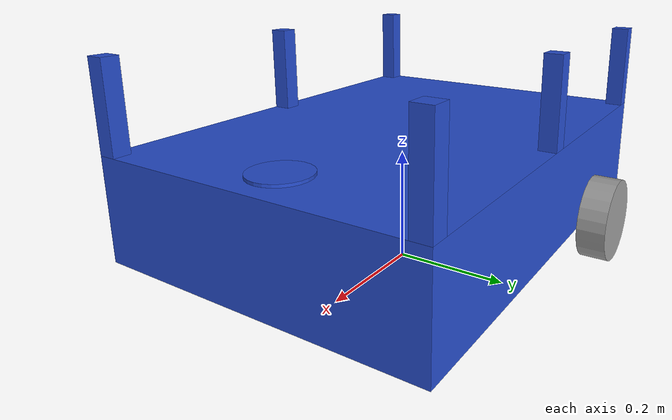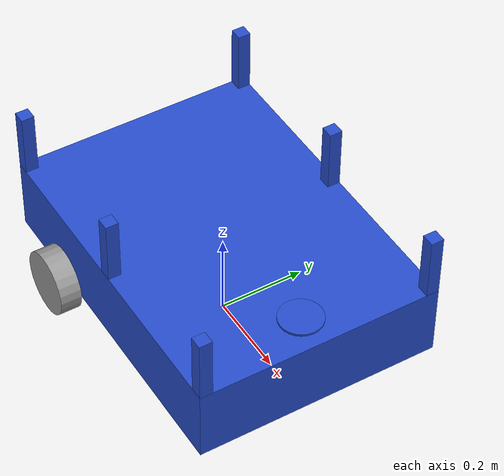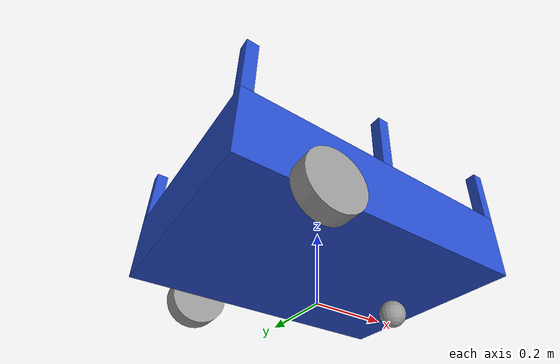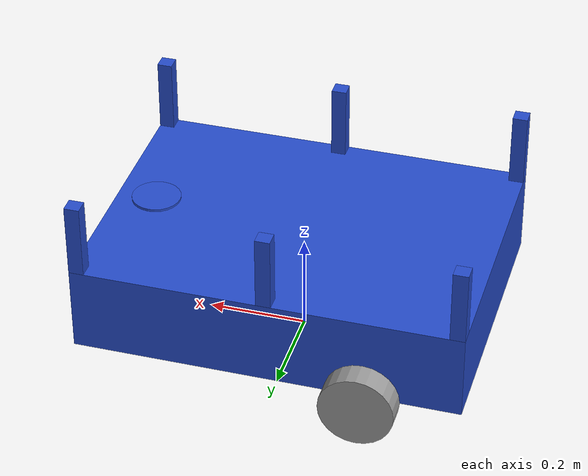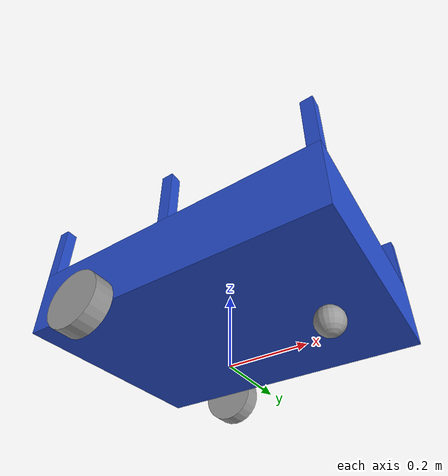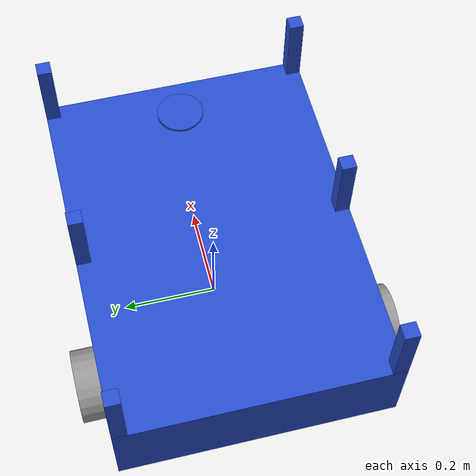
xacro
<?xml version="1.0"?>

<robot xmlns:xacro="http://www.ros.org/wiki/xacro">

    <xacro:property name="base_length" value="0.78" />
    <xacro:property name="base_width" value="0.57" />
    <xacro:property name="base_height" value="0.175" />
    <xacro:property name="wheel_radius" value="0.075" />
    <xacro:property name="wheel_length" value="0.05" />
    <xacro:property name="caster_wheel_radius" value="${wheel_radius / 2.0}" />
    <xacro:property name="support_side" value="0.03" />
    <xacro:property name="support_length" value="0.15" />

    <link name="base_link" />

    <link name="base_footprint">
    </link>

    <joint name="base_footprint_joint" type="fixed">
        <parent link="base_link"/>
        <child link="base_footprint"/>
        <origin xyz="0 0 0" rpy="0 0 0"/>
    </joint>

    <link name="chassis">
        <visual>
            <geometry>
                <box size="${base_length} ${base_width} ${base_height}" />
            </geometry>
            <origin xyz="0 0 ${base_height / 2.0}" rpy="0 0 0" />
            <material name="blue" />
        </visual>
        <collision>
            <geometry>
                <box size="${base_length} ${base_width} ${base_height}" />
            </geometry>
            <origin xyz="0 0 ${base_height / 2.0}" rpy="0 0 0" />
        </collision>
        <xacro:box_inertia m="5.0" l="${2*base_length}" w="${2*base_width}" h="${2*base_height}"
                           xyz="0 0 ${base_height / 2.0}" rpy="0 0 0" />
    </link>

    <joint name="base_link_chassis_joint" type="fixed">
        <parent link="base_link" />
        <child link="chassis" />
        <origin xyz="0 0 ${wheel_radius}" rpy="0 0 0" />
    </joint>

    <xacro:macro name="wheel_link" params="prefix">
        <link name="${prefix}_wheel_link">
            <visual>
                <geometry>
                    <cylinder radius="${wheel_radius}" length="${wheel_length}" />
                </geometry>
                <origin xyz="0 0 0" rpy="${pi / 2.0} 0 0" />
                <material name="grey" />
            </visual>
            <collision>
                <geometry>
                    <cylinder radius="${wheel_radius}" length="${wheel_length}" />
                </geometry>
                <origin xyz="0 0 0" rpy="${pi / 2.0} 0 0" />
            </collision>
            <xacro:cylinder_inertia m="1.0" r="${2*wheel_radius}" l="${2*wheel_length}"
                                    xyz="0 0 0" rpy="${pi / 2.0} 0 0" />
        </link>
    </xacro:macro>

    <xacro:wheel_link prefix="right" />
    <joint name="right_wheel_joint" type="continuous">
        <parent link="chassis" />
        <child link="right_wheel_link" />
        <origin xyz="${-base_length / 4.0} ${(-base_width / 2.0) - (wheel_length / 2.0) } 0" rpy="0 0 0" />
        <axis xyz="0 1 0" />
    </joint>

    <xacro:wheel_link prefix="left" />
    <joint name="left_wheel_joint" type="continuous">
        <parent link="chassis" />
        <child link="left_wheel_link" />
        <origin xyz="${-base_length / 4.0} ${(base_width / 2.0) + (wheel_length / 2.0) } 0" rpy="0 0 0" />
        <axis xyz="0 1 0" />
    </joint>

    <link name="caster_wheel_link">
        <visual>
            <geometry>
                <sphere radius="${caster_wheel_radius}" />
            </geometry>
            <origin xyz="0 0 0" rpy="0 0 0" />
            <material name="grey" />
        </visual>
        <collision>
            <geometry>
                <sphere radius="${caster_wheel_radius}" />
            </geometry>
            <origin xyz="0 0 0" rpy="0 0 0" />
        </collision>
        <xacro:sphere_inertia m="0.5" r="${2*caster_wheel_radius}"
                              xyz="0 0 0" rpy="0 0 0" />
    </link>

    <joint name="chassis_caster_wheel_joint" type="fixed">
        <parent link="chassis" />
        <child link="caster_wheel_link" />
        <origin xyz="${base_length / 3.0} 0 ${-caster_wheel_radius}" rpy="0 0 0" />
    </joint>
    <xacro:macro name="support_link" params="suffix">
        <link name="support_${suffix}">
            <visual>
                <geometry>
                    <box size="${support_side} ${support_side} ${support_length}" />
                </geometry>
                <origin xyz="0 0 ${(support_length/2.0)}" rpy="0 0 0" />
                <material name="blue" />
            </visual>
            <collision>
                <geometry>
                    <box size="${support_side} ${support_side} ${support_length}" />
                </geometry>
                <origin xyz="0 0 ${(support_length/2.0)}" rpy="0 0 0" />
            </collision>
            <xacro:box_inertia m="1.0" l="${2*support_side}" w="${2*support_side}" h="${2*support_length}"
                            xyz="0 0 ${(support_length/2.0)}" rpy="0 0 0" />
        </link>
    </xacro:macro>

    <xacro:support_link suffix = "1"/>
    <joint name="chassis_support_1" type="fixed">
            <parent link="chassis"/>
            <child link="support_1"/>
            <origin xyz=" ${(base_length/2.0) - (support_side/2.0)} ${(base_width/2.0) - (support_side/2.0)} ${base_height}" rpy="0 0 0"/>
    </joint>

    <xacro:support_link suffix = "2"/>
    <joint name="chassis_support_2" type="fixed">
            <parent link="chassis"/>
            <child link="support_2"/>
            <origin xyz=" 0.0 ${(base_width/2.0) - (support_side/2.0)} ${base_height}" rpy="0 0 0"/>
    </joint>

    <xacro:support_link suffix = "3"/>
    <joint name="chassis_support_3" type="fixed">
            <parent link="chassis"/>
            <child link="support_3"/>
            <origin xyz=" ${-(base_length/2.0) + (support_side/2.0)} ${(base_width/2.0) - (support_side/2.0)} ${base_height}" rpy="0 0 0"/>
    </joint>

    <xacro:support_link suffix = "4"/>
    <joint name="chassis_support_4" type="fixed">
            <parent link="chassis"/>
            <child link="support_4"/>
            <origin xyz=" ${-(base_length/2.0) + (support_side/2.0)} ${-(base_width/2.0) + (support_side/2.0)} ${base_height}" rpy="0 0 0"/>
    </joint>

    <xacro:support_link suffix = "5"/>
    <joint name="chassis_support_5" type="fixed">
            <parent link="chassis"/>
            <child link="support_5"/>
            <origin xyz=" 0.0 ${-(base_width/2.0) + (support_side/2.0)} ${base_height}" rpy="0 0 0"/>
    </joint>

    <xacro:support_link suffix = "6"/>
    <joint name="chassis_support_6" type="fixed">
            <parent link="chassis"/>
            <child link="support_6"/>
            <origin xyz=" ${(base_length/2.0) - (support_side/2.0)} ${-(base_width/2.0) + (support_side/2.0)} ${base_height}" rpy="0 0 0"/>
    </joint>

    <link name="laser_base_link">
        <visual>
            <geometry>
                <cylinder radius="0.05" length="0.01" />
            </geometry>
            <origin xyz="0 0 0.0" rpy="0 0 0" />
            <material name="blue" />

        </visual>
        <collision>
            <geometry>
                <cylinder radius="0.05" length="0.01" />
            </geometry>
            <origin xyz="0 0 0" rpy="0 0 0" />
            <xacro:cylinder_inertia m="0.1" r="0.05" l="0.1"
                                    xyz="0 0 0" rpy="${pi / 2.0} 0 0" />
        </collision>
    </link>

    <joint name="chassis_laser_base_joint" type="fixed">
        <parent link="chassis"/>
        <child link="laser_base_link"/>
        <origin xyz=" ${(base_length/2.0)-(0.05+0.03)} 0 ${base_height}" rpy="0 0 0"/>
    </joint>

</robot>
